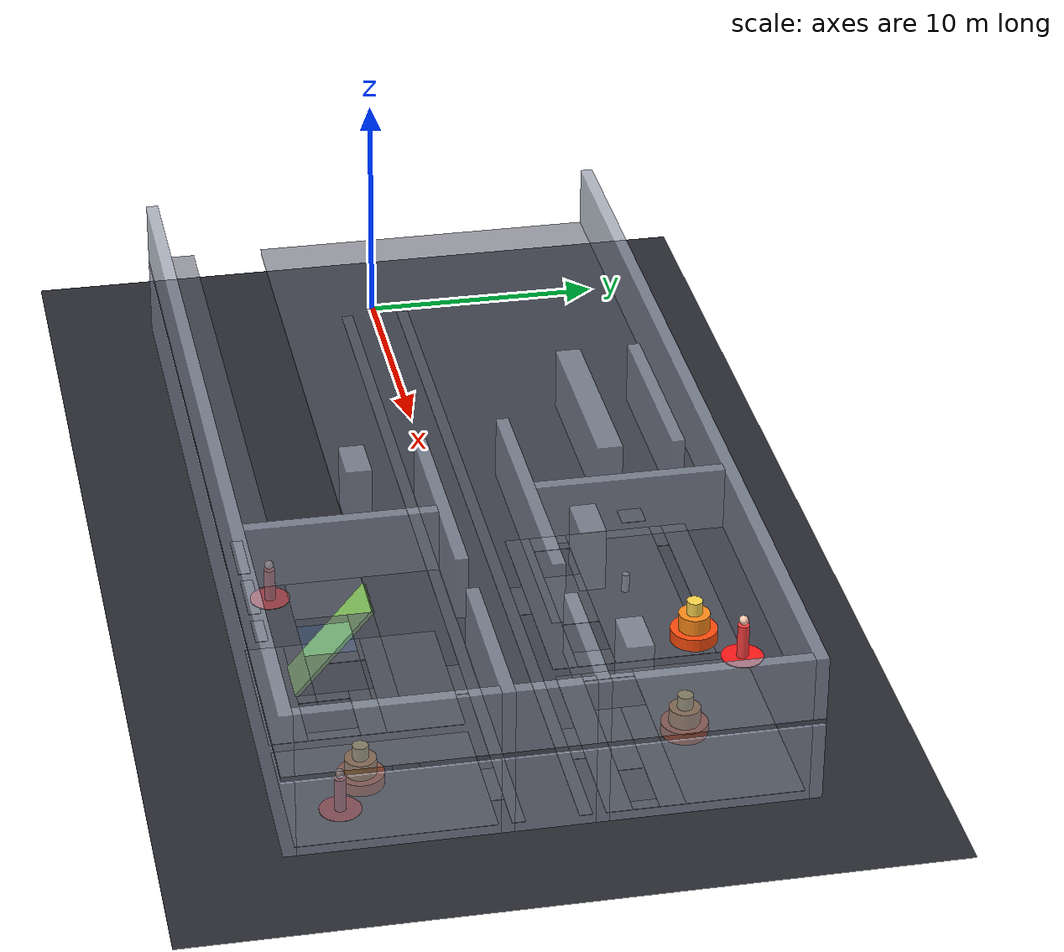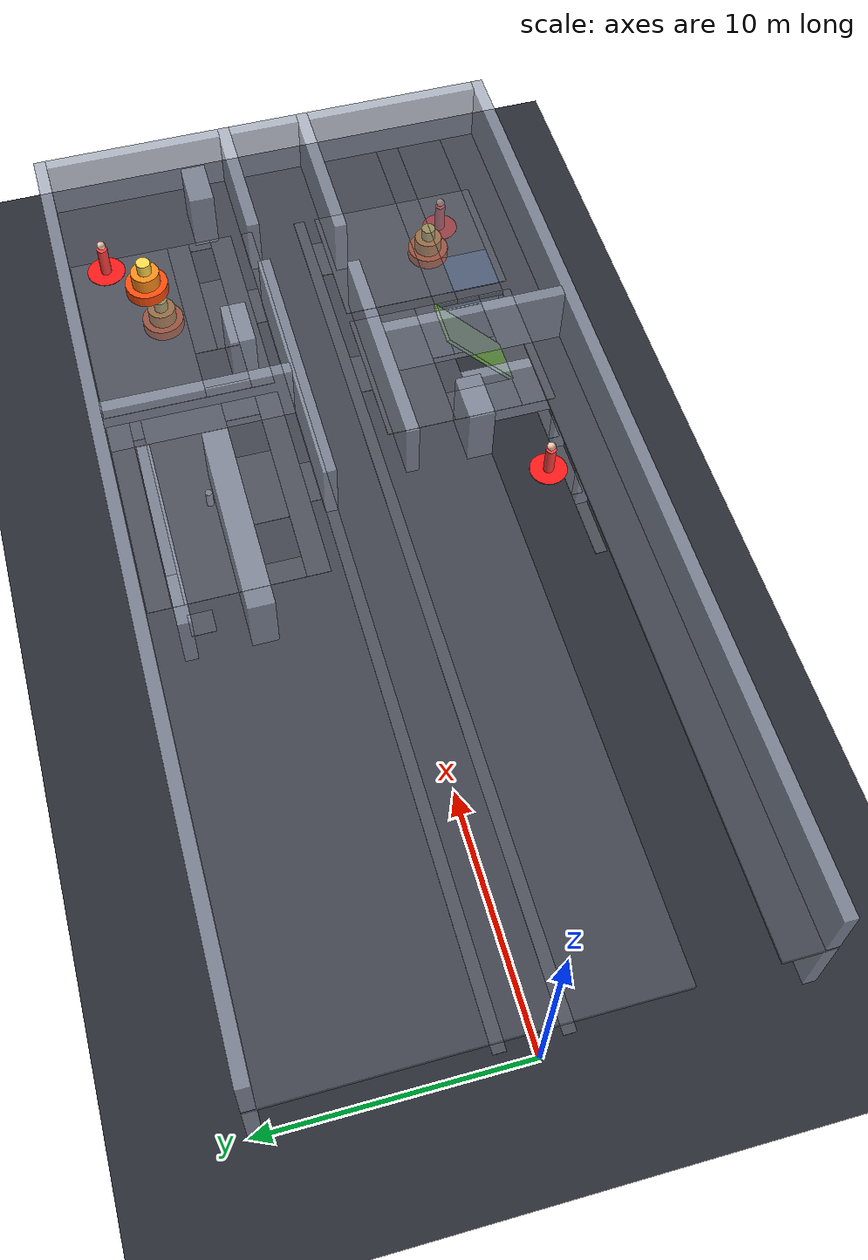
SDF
<sdf version="1.9">
 <world name="living_map_fire">
  <model name="ground">
   <static>true</static>
   <link name="l">
    <collision name="c"><geometry><plane><normal>0 0 1</normal><size>120 80</size></plane></geometry></collision>
    <visual name="v">
     <geometry><plane><normal>0 0 1</normal><size>120 80</size></plane></geometry>
     <material><ambient>0.16 0.17 0.2 1.0</ambient><diffuse>0.16 0.17 0.2 1.0</diffuse></material>
    </visual>
   </link>
  </model>
  <model name="slab0_2">
   <static>true</static>
   <pose>29.750 -8.750 0.010 0 0 0</pose>
   <link name="l">
    <collision name="c"><geometry><box><size>6.500 1.500 0.020</size></box></geometry></collision>
    <visual name="v">
     <geometry><box><size>6.500 1.500 0.020</size></box></geometry>
     <material><ambient>0.28 0.29 0.32 1.0</ambient><diffuse>0.28 0.29 0.32 1.0</diffuse></material>
    </visual>
   </link>
  </model>
  <model name="slab0_3">
   <static>true</static>
   <pose>36.500 -5.750 0.010 0 0 0</pose>
   <link name="l">
    <collision name="c"><geometry><box><size>6.000 7.500 0.020</size></box></geometry></collision>
    <visual name="v">
     <geometry><box><size>6.000 7.500 0.020</size></box></geometry>
     <material><ambient>0.28 0.29 0.32 1.0</ambient><diffuse>0.28 0.29 0.32 1.0</diffuse></material>
    </visual>
   </link>
  </model>
  <model name="slab0_6">
   <static>true</static>
   <pose>19.750 -8.750 0.010 0 0 0</pose>
   <link name="l">
    <collision name="c"><geometry><box><size>2.500 0.500 0.020</size></box></geometry></collision>
    <visual name="v">
     <geometry><box><size>2.500 0.500 0.020</size></box></geometry>
     <material><ambient>0.28 0.29 0.32 1.0</ambient><diffuse>0.28 0.29 0.32 1.0</diffuse></material>
    </visual>
   </link>
  </model>
  <model name="slab0_7">
   <static>true</static>
   <pose>22.750 -8.750 0.010 0 0 0</pose>
   <link name="l">
    <collision name="c"><geometry><box><size>2.500 0.500 0.020</size></box></geometry></collision>
    <visual name="v">
     <geometry><box><size>2.500 0.500 0.020</size></box></geometry>
     <material><ambient>0.28 0.29 0.32 1.0</ambient><diffuse>0.28 0.29 0.32 1.0</diffuse></material>
    </visual>
   </link>
  </model>
  <model name="slab0_8">
   <static>true</static>
   <pose>25.250 -8.750 0.010 0 0 0</pose>
   <link name="l">
    <collision name="c"><geometry><box><size>1.500 0.500 0.020</size></box></geometry></collision>
    <visual name="v">
     <geometry><box><size>1.500 0.500 0.020</size></box></geometry>
     <material><ambient>0.28 0.29 0.32 1.0</ambient><diffuse>0.28 0.29 0.32 1.0</diffuse></material>
    </visual>
   </link>
  </model>
  <model name="slab0_13">
   <static>true</static>
   <pose>27.250 -6.500 0.010 0 0 0</pose>
   <link name="l">
    <collision name="c"><geometry><box><size>1.500 3.000 0.020</size></box></geometry></collision>
    <visual name="v">
     <geometry><box><size>1.500 3.000 0.020</size></box></geometry>
     <material><ambient>0.28 0.29 0.32 1.0</ambient><diffuse>0.28 0.29 0.32 1.0</diffuse></material>
    </visual>
   </link>
  </model>
  <model name="slab0_14">
   <static>true</static>
   <pose>30.250 -7.000 0.010 0 0 0</pose>
   <link name="l">
    <collision name="c"><geometry><box><size>0.500 2.000 0.020</size></box></geometry></collision>
    <visual name="v">
     <geometry><box><size>0.500 2.000 0.020</size></box></geometry>
     <material><ambient>0.28 0.29 0.32 1.0</ambient><diffuse>0.28 0.29 0.32 1.0</diffuse></material>
    </visual>
   </link>
  </model>
  <model name="slab0_15">
   <static>true</static>
   <pose>32.750 -7.000 0.010 0 0 0</pose>
   <link name="l">
    <collision name="c"><geometry><box><size>0.500 2.000 0.020</size></box></geometry></collision>
    <visual name="v">
     <geometry><box><size>0.500 2.000 0.020</size></box></geometry>
     <material><ambient>0.28 0.29 0.32 1.0</ambient><diffuse>0.28 0.29 0.32 1.0</diffuse></material>
    </visual>
   </link>
  </model>
  <model name="slab0_18">
   <static>true</static>
   <pose>31.500 -5.500 0.010 0 0 0</pose>
   <link name="l">
    <collision name="c"><geometry><box><size>3.000 1.000 0.020</size></box></geometry></collision>
    <visual name="v">
     <geometry><box><size>3.000 1.000 0.020</size></box></geometry>
     <material><ambient>0.28 0.29 0.32 1.0</ambient><diffuse>0.28 0.29 0.32 1.0</diffuse></material>
    </visual>
   </link>
  </model>
  <model name="slab0_20">
   <static>true</static>
   <pose>29.750 -3.500 0.010 0 0 0</pose>
   <link name="l">
    <collision name="c"><geometry><box><size>6.500 3.000 0.020</size></box></geometry></collision>
    <visual name="v">
     <geometry><box><size>6.500 3.000 0.020</size></box></geometry>
     <material><ambient>0.28 0.29 0.32 1.0</ambient><diffuse>0.28 0.29 0.32 1.0</diffuse></material>
    </visual>
   </link>
  </model>
  <model name="slab0_23">
   <static>true</static>
   <pose>30.000 -1.750 0.010 0 0 0</pose>
   <link name="l">
    <collision name="c"><geometry><box><size>2.000 0.500 0.020</size></box></geometry></collision>
    <visual name="v">
     <geometry><box><size>2.000 0.500 0.020</size></box></geometry>
     <material><ambient>0.28 0.29 0.32 1.0</ambient><diffuse>0.28 0.29 0.32 1.0</diffuse></material>
    </visual>
   </link>
  </model>
  <model name="slab0_24">
   <static>true</static>
   <pose>37.000 -1.750 0.010 0 0 0</pose>
   <link name="l">
    <collision name="c"><geometry><box><size>2.000 0.500 0.020</size></box></geometry></collision>
    <visual name="v">
     <geometry><box><size>2.000 0.500 0.020</size></box></geometry>
     <material><ambient>0.28 0.29 0.32 1.0</ambient><diffuse>0.28 0.29 0.32 1.0</diffuse></material>
    </visual>
   </link>
  </model>
  <model name="slab0_25">
   <static>true</static>
   <pose>20.000 -1.250 0.010 0 0 0</pose>
   <link name="l">
    <collision name="c"><geometry><box><size>39.000 0.500 0.020</size></box></geometry></collision>
    <visual name="v">
     <geometry><box><size>39.000 0.500 0.020</size></box></geometry>
     <material><ambient>0.28 0.29 0.32 1.0</ambient><diffuse>0.28 0.29 0.32 1.0</diffuse></material>
    </visual>
   </link>
  </model>
  <model name="slab0_28">
   <static>true</static>
   <pose>20.000 1.250 0.010 0 0 0</pose>
   <link name="l">
    <collision name="c"><geometry><box><size>39.000 0.500 0.020</size></box></geometry></collision>
    <visual name="v">
     <geometry><box><size>39.000 0.500 0.020</size></box></geometry>
     <material><ambient>0.28 0.29 0.32 1.0</ambient><diffuse>0.28 0.29 0.32 1.0</diffuse></material>
    </visual>
   </link>
  </model>
  <model name="slab0_31">
   <static>true</static>
   <pose>25.000 1.750 0.010 0 0 0</pose>
   <link name="l">
    <collision name="c"><geometry><box><size>2.000 0.500 0.020</size></box></geometry></collision>
    <visual name="v">
     <geometry><box><size>2.000 0.500 0.020</size></box></geometry>
     <material><ambient>0.28 0.29 0.32 1.0</ambient><diffuse>0.28 0.29 0.32 1.0</diffuse></material>
    </visual>
   </link>
  </model>
  <model name="slab0_32">
   <static>true</static>
   <pose>35.000 1.750 0.010 0 0 0</pose>
   <link name="l">
    <collision name="c"><geometry><box><size>2.000 0.500 0.020</size></box></geometry></collision>
    <visual name="v">
     <geometry><box><size>2.000 0.500 0.020</size></box></geometry>
     <material><ambient>0.28 0.29 0.32 1.0</ambient><diffuse>0.28 0.29 0.32 1.0</diffuse></material>
    </visual>
   </link>
  </model>
  <model name="slab0_35">
   <static>true</static>
   <pose>25.250 2.500 0.010 0 0 0</pose>
   <link name="l">
    <collision name="c"><geometry><box><size>9.500 1.000 0.020</size></box></geometry></collision>
    <visual name="v">
     <geometry><box><size>9.500 1.000 0.020</size></box></geometry>
     <material><ambient>0.28 0.29 0.32 1.0</ambient><diffuse>0.28 0.29 0.32 1.0</diffuse></material>
    </visual>
   </link>
  </model>
  <model name="slab0_36">
   <static>true</static>
   <pose>35.000 2.500 0.010 0 0 0</pose>
   <link name="l">
    <collision name="c"><geometry><box><size>9.000 1.000 0.020</size></box></geometry></collision>
    <visual name="v">
     <geometry><box><size>9.000 1.000 0.020</size></box></geometry>
     <material><ambient>0.28 0.29 0.32 1.0</ambient><diffuse>0.28 0.29 0.32 1.0</diffuse></material>
    </visual>
   </link>
  </model>
  <model name="slab0_42">
   <static>true</static>
   <pose>21.000 3.750 0.010 0 0 0</pose>
   <link name="l">
    <collision name="c"><geometry><box><size>1.000 1.500 0.020</size></box></geometry></collision>
    <visual name="v">
     <geometry><box><size>1.000 1.500 0.020</size></box></geometry>
     <material><ambient>0.28 0.29 0.32 1.0</ambient><diffuse>0.28 0.29 0.32 1.0</diffuse></material>
    </visual>
   </link>
  </model>
  <model name="slab0_43">
   <static>true</static>
   <pose>25.250 3.750 0.010 0 0 0</pose>
   <link name="l">
    <collision name="c"><geometry><box><size>3.500 1.500 0.020</size></box></geometry></collision>
    <visual name="v">
     <geometry><box><size>3.500 1.500 0.020</size></box></geometry>
     <material><ambient>0.28 0.29 0.32 1.0</ambient><diffuse>0.28 0.29 0.32 1.0</diffuse></material>
    </visual>
   </link>
  </model>
  <model name="slab0_44">
   <static>true</static>
   <pose>29.500 3.750 0.010 0 0 0</pose>
   <link name="l">
    <collision name="c"><geometry><box><size>1.000 1.500 0.020</size></box></geometry></collision>
    <visual name="v">
     <geometry><box><size>1.000 1.500 0.020</size></box></geometry>
     <material><ambient>0.28 0.29 0.32 1.0</ambient><diffuse>0.28 0.29 0.32 1.0</diffuse></material>
    </visual>
   </link>
  </model>
  <model name="slab0_45">
   <static>true</static>
   <pose>30.750 4.000 0.010 0 0 0</pose>
   <link name="l">
    <collision name="c"><geometry><box><size>0.500 2.000 0.020</size></box></geometry></collision>
    <visual name="v">
     <geometry><box><size>0.500 2.000 0.020</size></box></geometry>
     <material><ambient>0.28 0.29 0.32 1.0</ambient><diffuse>0.28 0.29 0.32 1.0</diffuse></material>
    </visual>
   </link>
  </model>
  <model name="slab0_46">
   <static>true</static>
   <pose>35.000 3.500 0.010 0 0 0</pose>
   <link name="l">
    <collision name="c"><geometry><box><size>4.000 1.000 0.020</size></box></geometry></collision>
    <visual name="v">
     <geometry><box><size>4.000 1.000 0.020</size></box></geometry>
     <material><ambient>0.28 0.29 0.32 1.0</ambient><diffuse>0.28 0.29 0.32 1.0</diffuse></material>
    </visual>
   </link>
  </model>
  <model name="slab0_47">
   <static>true</static>
   <pose>39.250 3.500 0.010 0 0 0</pose>
   <link name="l">
    <collision name="c"><geometry><box><size>0.500 1.000 0.020</size></box></geometry></collision>
    <visual name="v">
     <geometry><box><size>0.500 1.000 0.020</size></box></geometry>
     <material><ambient>0.28 0.29 0.32 1.0</ambient><diffuse>0.28 0.29 0.32 1.0</diffuse></material>
    </visual>
   </link>
  </model>
  <model name="slab0_48">
   <static>true</static>
   <pose>36.250 4.500 0.010 0 0 0</pose>
   <link name="l">
    <collision name="c"><geometry><box><size>6.500 1.000 0.020</size></box></geometry></collision>
    <visual name="v">
     <geometry><box><size>6.500 1.000 0.020</size></box></geometry>
     <material><ambient>0.28 0.29 0.32 1.0</ambient><diffuse>0.28 0.29 0.32 1.0</diffuse></material>
    </visual>
   </link>
  </model>
  <model name="slab0_50">
   <static>true</static>
   <pose>25.250 6.250 0.010 0 0 0</pose>
   <link name="l">
    <collision name="c"><geometry><box><size>9.500 3.500 0.020</size></box></geometry></collision>
    <visual name="v">
     <geometry><box><size>9.500 3.500 0.020</size></box></geometry>
     <material><ambient>0.28 0.29 0.32 1.0</ambient><diffuse>0.28 0.29 0.32 1.0</diffuse></material>
    </visual>
   </link>
  </model>
  <model name="slab0_51">
   <static>true</static>
   <pose>35.000 7.250 0.010 0 0 0</pose>
   <link name="l">
    <collision name="c"><geometry><box><size>9.000 4.500 0.020</size></box></geometry></collision>
    <visual name="v">
     <geometry><box><size>9.000 4.500 0.020</size></box></geometry>
     <material><ambient>0.28 0.29 0.32 1.0</ambient><diffuse>0.28 0.29 0.32 1.0</diffuse></material>
    </visual>
   </link>
  </model>
  <model name="slab0_54">
   <static>true</static>
   <pose>19.500 7.500 0.010 0 0 0</pose>
   <link name="l">
    <collision name="c"><geometry><box><size>1.000 1.000 0.020</size></box></geometry></collision>
    <visual name="v">
     <geometry><box><size>1.000 1.000 0.020</size></box></geometry>
     <material><ambient>0.28 0.29 0.32 1.0</ambient><diffuse>0.28 0.29 0.32 1.0</diffuse></material>
    </visual>
   </link>
  </model>
  <model name="slab0_58">
   <static>true</static>
   <pose>21.250 8.250 0.010 0 0 0</pose>
   <link name="l">
    <collision name="c"><geometry><box><size>1.500 0.500 0.020</size></box></geometry></collision>
    <visual name="v">
     <geometry><box><size>1.500 0.500 0.020</size></box></geometry>
     <material><ambient>0.28 0.29 0.32 1.0</ambient><diffuse>0.28 0.29 0.32 1.0</diffuse></material>
    </visual>
   </link>
  </model>
  <model name="slab0_59">
   <static>true</static>
   <pose>29.500 8.250 0.010 0 0 0</pose>
   <link name="l">
    <collision name="c"><geometry><box><size>1.000 0.500 0.020</size></box></geometry></collision>
    <visual name="v">
     <geometry><box><size>1.000 0.500 0.020</size></box></geometry>
     <material><ambient>0.28 0.29 0.32 1.0</ambient><diffuse>0.28 0.29 0.32 1.0</diffuse></material>
    </visual>
   </link>
  </model>
  <model name="slab0_61">
   <static>true</static>
   <pose>25.250 9.000 0.010 0 0 0</pose>
   <link name="l">
    <collision name="c"><geometry><box><size>9.500 1.000 0.020</size></box></geometry></collision>
    <visual name="v">
     <geometry><box><size>9.500 1.000 0.020</size></box></geometry>
     <material><ambient>0.28 0.29 0.32 1.0</ambient><diffuse>0.28 0.29 0.32 1.0</diffuse></material>
    </visual>
   </link>
  </model>
  <model name="wall0_0">
   <static>true</static>
   <pose>20.000 -9.750 1.600 0 0 0</pose>
   <link name="l">
    <collision name="c"><geometry><box><size>40.000 0.500 3.200</size></box></geometry></collision>
    <visual name="v">
     <geometry><box><size>40.000 0.500 3.200</size></box></geometry>
     <material><ambient>0.62 0.65 0.72 0.75</ambient><diffuse>0.62 0.65 0.72 0.75</diffuse></material>
    </visual>
   </link>
  </model>
  <model name="wall0_3">
   <static>true</static>
   <pose>26.250 -5.750 1.600 0 0 0</pose>
   <link name="l">
    <collision name="c"><geometry><box><size>0.500 7.500 3.200</size></box></geometry></collision>
    <visual name="v">
     <geometry><box><size>0.500 7.500 3.200</size></box></geometry>
     <material><ambient>0.62 0.65 0.72 0.75</ambient><diffuse>0.62 0.65 0.72 0.75</diffuse></material>
    </visual>
   </link>
  </model>
  <model name="wall0_4">
   <static>true</static>
   <pose>33.250 -5.750 1.600 0 0 0</pose>
   <link name="l">
    <collision name="c"><geometry><box><size>0.500 7.500 3.200</size></box></geometry></collision>
    <visual name="v">
     <geometry><box><size>0.500 7.500 3.200</size></box></geometry>
     <material><ambient>0.62 0.65 0.72 0.75</ambient><diffuse>0.62 0.65 0.72 0.75</diffuse></material>
    </visual>
   </link>
  </model>
  <model name="wall0_5">
   <static>true</static>
   <pose>39.750 -5.750 1.600 0 0 0</pose>
   <link name="l">
    <collision name="c"><geometry><box><size>0.500 7.500 3.200</size></box></geometry></collision>
    <visual name="v">
     <geometry><box><size>0.500 7.500 3.200</size></box></geometry>
     <material><ambient>0.62 0.65 0.72 0.75</ambient><diffuse>0.62 0.65 0.72 0.75</diffuse></material>
    </visual>
   </link>
  </model>
  <model name="wall0_8">
   <static>true</static>
   <pose>21.250 -8.750 1.600 0 0 0</pose>
   <link name="l">
    <collision name="c"><geometry><box><size>0.500 0.500 3.200</size></box></geometry></collision>
    <visual name="v">
     <geometry><box><size>0.500 0.500 3.200</size></box></geometry>
     <material><ambient>0.62 0.65 0.72 0.75</ambient><diffuse>0.62 0.65 0.72 0.75</diffuse></material>
    </visual>
   </link>
  </model>
  <model name="wall0_9">
   <static>true</static>
   <pose>24.250 -8.750 1.600 0 0 0</pose>
   <link name="l">
    <collision name="c"><geometry><box><size>0.500 0.500 3.200</size></box></geometry></collision>
    <visual name="v">
     <geometry><box><size>0.500 0.500 3.200</size></box></geometry>
     <material><ambient>0.62 0.65 0.72 0.75</ambient><diffuse>0.62 0.65 0.72 0.75</diffuse></material>
    </visual>
   </link>
  </model>
  <model name="wall0_18">
   <static>true</static>
   <pose>24.500 -1.750 1.600 0 0 0</pose>
   <link name="l">
    <collision name="c"><geometry><box><size>9.000 0.500 3.200</size></box></geometry></collision>
    <visual name="v">
     <geometry><box><size>9.000 0.500 3.200</size></box></geometry>
     <material><ambient>0.62 0.65 0.72 0.75</ambient><diffuse>0.62 0.65 0.72 0.75</diffuse></material>
    </visual>
   </link>
  </model>
  <model name="wall0_19">
   <static>true</static>
   <pose>33.500 -1.750 1.600 0 0 0</pose>
   <link name="l">
    <collision name="c"><geometry><box><size>5.000 0.500 3.200</size></box></geometry></collision>
    <visual name="v">
     <geometry><box><size>5.000 0.500 3.200</size></box></geometry>
     <material><ambient>0.62 0.65 0.72 0.75</ambient><diffuse>0.62 0.65 0.72 0.75</diffuse></material>
    </visual>
   </link>
  </model>
  <model name="wall0_20">
   <static>true</static>
   <pose>39.000 -1.750 1.600 0 0 0</pose>
   <link name="l">
    <collision name="c"><geometry><box><size>2.000 0.500 3.200</size></box></geometry></collision>
    <visual name="v">
     <geometry><box><size>2.000 0.500 3.200</size></box></geometry>
     <material><ambient>0.62 0.65 0.72 0.75</ambient><diffuse>0.62 0.65 0.72 0.75</diffuse></material>
    </visual>
   </link>
  </model>
  <model name="wall0_22">
   <static>true</static>
   <pose>39.750 0.000 1.600 0 0 0</pose>
   <link name="l">
    <collision name="c"><geometry><box><size>0.500 3.000 3.200</size></box></geometry></collision>
    <visual name="v">
     <geometry><box><size>0.500 3.000 3.200</size></box></geometry>
     <material><ambient>0.62 0.65 0.72 0.75</ambient><diffuse>0.62 0.65 0.72 0.75</diffuse></material>
    </visual>
   </link>
  </model>
  <model name="wall0_26">
   <static>true</static>
   <pose>20.000 1.750 1.600 0 0 0</pose>
   <link name="l">
    <collision name="c"><geometry><box><size>8.000 0.500 3.200</size></box></geometry></collision>
    <visual name="v">
     <geometry><box><size>8.000 0.500 3.200</size></box></geometry>
     <material><ambient>0.62 0.65 0.72 0.75</ambient><diffuse>0.62 0.65 0.72 0.75</diffuse></material>
    </visual>
   </link>
  </model>
  <model name="wall0_27">
   <static>true</static>
   <pose>30.000 1.750 1.600 0 0 0</pose>
   <link name="l">
    <collision name="c"><geometry><box><size>8.000 0.500 3.200</size></box></geometry></collision>
    <visual name="v">
     <geometry><box><size>8.000 0.500 3.200</size></box></geometry>
     <material><ambient>0.62 0.65 0.72 0.75</ambient><diffuse>0.62 0.65 0.72 0.75</diffuse></material>
    </visual>
   </link>
  </model>
  <model name="wall0_28">
   <static>true</static>
   <pose>38.000 1.750 1.600 0 0 0</pose>
   <link name="l">
    <collision name="c"><geometry><box><size>4.000 0.500 3.200</size></box></geometry></collision>
    <visual name="v">
     <geometry><box><size>4.000 0.500 3.200</size></box></geometry>
     <material><ambient>0.62 0.65 0.72 0.75</ambient><diffuse>0.62 0.65 0.72 0.75</diffuse></material>
    </visual>
   </link>
  </model>
  <model name="wall0_31">
   <static>true</static>
   <pose>20.250 5.750 1.600 0 0 0</pose>
   <link name="l">
    <collision name="c"><geometry><box><size>0.500 7.500 3.200</size></box></geometry></collision>
    <visual name="v">
     <geometry><box><size>0.500 7.500 3.200</size></box></geometry>
     <material><ambient>0.62 0.65 0.72 0.75</ambient><diffuse>0.62 0.65 0.72 0.75</diffuse></material>
    </visual>
   </link>
  </model>
  <model name="wall0_32">
   <static>true</static>
   <pose>30.250 5.750 1.600 0 0 0</pose>
   <link name="l">
    <collision name="c"><geometry><box><size>0.500 7.500 3.200</size></box></geometry></collision>
    <visual name="v">
     <geometry><box><size>0.500 7.500 3.200</size></box></geometry>
     <material><ambient>0.62 0.65 0.72 0.75</ambient><diffuse>0.62 0.65 0.72 0.75</diffuse></material>
    </visual>
   </link>
  </model>
  <model name="wall0_33">
   <static>true</static>
   <pose>39.750 5.750 1.600 0 0 0</pose>
   <link name="l">
    <collision name="c"><geometry><box><size>0.500 7.500 3.200</size></box></geometry></collision>
    <visual name="v">
     <geometry><box><size>0.500 7.500 3.200</size></box></geometry>
     <material><ambient>0.62 0.65 0.72 0.75</ambient><diffuse>0.62 0.65 0.72 0.75</diffuse></material>
    </visual>
   </link>
  </model>
  <model name="wall0_37">
   <static>true</static>
   <pose>22.500 3.250 1.600 0 0 0</pose>
   <link name="l">
    <collision name="c"><geometry><box><size>2.000 0.500 3.200</size></box></geometry></collision>
    <visual name="v">
     <geometry><box><size>2.000 0.500 3.200</size></box></geometry>
     <material><ambient>0.62 0.65 0.72 0.75</ambient><diffuse>0.62 0.65 0.72 0.75</diffuse></material>
    </visual>
   </link>
  </model>
  <model name="wall0_38">
   <static>true</static>
   <pose>28.000 3.250 1.600 0 0 0</pose>
   <link name="l">
    <collision name="c"><geometry><box><size>2.000 0.500 3.200</size></box></geometry></collision>
    <visual name="v">
     <geometry><box><size>2.000 0.500 3.200</size></box></geometry>
     <material><ambient>0.62 0.65 0.72 0.75</ambient><diffuse>0.62 0.65 0.72 0.75</diffuse></material>
    </visual>
   </link>
  </model>
  <model name="wall0_39">
   <static>true</static>
   <pose>32.000 3.250 1.600 0 0 0</pose>
   <link name="l">
    <collision name="c"><geometry><box><size>2.000 0.500 3.200</size></box></geometry></collision>
    <visual name="v">
     <geometry><box><size>2.000 0.500 3.200</size></box></geometry>
     <material><ambient>0.62 0.65 0.72 0.75</ambient><diffuse>0.62 0.65 0.72 0.75</diffuse></material>
    </visual>
   </link>
  </model>
  <model name="wall0_40">
   <static>true</static>
   <pose>38.000 3.500 1.600 0 0 0</pose>
   <link name="l">
    <collision name="c"><geometry><box><size>2.000 1.000 3.200</size></box></geometry></collision>
    <visual name="v">
     <geometry><box><size>2.000 1.000 3.200</size></box></geometry>
     <material><ambient>0.62 0.65 0.72 0.75</ambient><diffuse>0.62 0.65 0.72 0.75</diffuse></material>
    </visual>
   </link>
  </model>
  <model name="wall0_43">
   <static>true</static>
   <pose>21.750 3.750 1.600 0 0 0</pose>
   <link name="l">
    <collision name="c"><geometry><box><size>0.500 0.500 3.200</size></box></geometry></collision>
    <visual name="v">
     <geometry><box><size>0.500 0.500 3.200</size></box></geometry>
     <material><ambient>0.62 0.65 0.72 0.75</ambient><diffuse>0.62 0.65 0.72 0.75</diffuse></material>
    </visual>
   </link>
  </model>
  <model name="wall0_44">
   <static>true</static>
   <pose>23.250 3.750 1.600 0 0 0</pose>
   <link name="l">
    <collision name="c"><geometry><box><size>0.500 0.500 3.200</size></box></geometry></collision>
    <visual name="v">
     <geometry><box><size>0.500 0.500 3.200</size></box></geometry>
     <material><ambient>0.62 0.65 0.72 0.75</ambient><diffuse>0.62 0.65 0.72 0.75</diffuse></material>
    </visual>
   </link>
  </model>
  <model name="wall0_45">
   <static>true</static>
   <pose>27.250 3.750 1.600 0 0 0</pose>
   <link name="l">
    <collision name="c"><geometry><box><size>0.500 0.500 3.200</size></box></geometry></collision>
    <visual name="v">
     <geometry><box><size>0.500 0.500 3.200</size></box></geometry>
     <material><ambient>0.62 0.65 0.72 0.75</ambient><diffuse>0.62 0.65 0.72 0.75</diffuse></material>
    </visual>
   </link>
  </model>
  <model name="wall0_46">
   <static>true</static>
   <pose>28.750 3.750 1.600 0 0 0</pose>
   <link name="l">
    <collision name="c"><geometry><box><size>0.500 0.500 3.200</size></box></geometry></collision>
    <visual name="v">
     <geometry><box><size>0.500 0.500 3.200</size></box></geometry>
     <material><ambient>0.62 0.65 0.72 0.75</ambient><diffuse>0.62 0.65 0.72 0.75</diffuse></material>
    </visual>
   </link>
  </model>
  <model name="wall0_47">
   <static>true</static>
   <pose>31.250 4.000 1.600 0 0 0</pose>
   <link name="l">
    <collision name="c"><geometry><box><size>0.500 1.000 3.200</size></box></geometry></collision>
    <visual name="v">
     <geometry><box><size>0.500 1.000 3.200</size></box></geometry>
     <material><ambient>0.62 0.65 0.72 0.75</ambient><diffuse>0.62 0.65 0.72 0.75</diffuse></material>
    </visual>
   </link>
  </model>
  <model name="wall0_48">
   <static>true</static>
   <pose>32.750 4.000 1.600 0 0 0</pose>
   <link name="l">
    <collision name="c"><geometry><box><size>0.500 1.000 3.200</size></box></geometry></collision>
    <visual name="v">
     <geometry><box><size>0.500 1.000 3.200</size></box></geometry>
     <material><ambient>0.62 0.65 0.72 0.75</ambient><diffuse>0.62 0.65 0.72 0.75</diffuse></material>
    </visual>
   </link>
  </model>
  <model name="wall0_50">
   <static>true</static>
   <pose>22.500 4.250 1.600 0 0 0</pose>
   <link name="l">
    <collision name="c"><geometry><box><size>2.000 0.500 3.200</size></box></geometry></collision>
    <visual name="v">
     <geometry><box><size>2.000 0.500 3.200</size></box></geometry>
     <material><ambient>0.62 0.65 0.72 0.75</ambient><diffuse>0.62 0.65 0.72 0.75</diffuse></material>
    </visual>
   </link>
  </model>
  <model name="wall0_51">
   <static>true</static>
   <pose>28.000 4.250 1.600 0 0 0</pose>
   <link name="l">
    <collision name="c"><geometry><box><size>2.000 0.500 3.200</size></box></geometry></collision>
    <visual name="v">
     <geometry><box><size>2.000 0.500 3.200</size></box></geometry>
     <material><ambient>0.62 0.65 0.72 0.75</ambient><diffuse>0.62 0.65 0.72 0.75</diffuse></material>
    </visual>
   </link>
  </model>
  <model name="wall0_52">
   <static>true</static>
   <pose>32.000 4.750 1.600 0 0 0</pose>
   <link name="l">
    <collision name="c"><geometry><box><size>2.000 0.500 3.200</size></box></geometry></collision>
    <visual name="v">
     <geometry><box><size>2.000 0.500 3.200</size></box></geometry>
     <material><ambient>0.62 0.65 0.72 0.75</ambient><diffuse>0.62 0.65 0.72 0.75</diffuse></material>
    </visual>
   </link>
  </model>
  <model name="wall0_57">
   <static>true</static>
   <pose>25.500 8.250 1.600 0 0 0</pose>
   <link name="l">
    <collision name="c"><geometry><box><size>7.000 0.500 3.200</size></box></geometry></collision>
    <visual name="v">
     <geometry><box><size>7.000 0.500 3.200</size></box></geometry>
     <material><ambient>0.62 0.65 0.72 0.75</ambient><diffuse>0.62 0.65 0.72 0.75</diffuse></material>
    </visual>
   </link>
  </model>
  <model name="wall0_58">
   <static>true</static>
   <pose>20.000 9.750 1.600 0 0 0</pose>
   <link name="l">
    <collision name="c"><geometry><box><size>40.000 0.500 3.200</size></box></geometry></collision>
    <visual name="v">
     <geometry><box><size>40.000 0.500 3.200</size></box></geometry>
     <material><ambient>0.62 0.65 0.72 0.75</ambient><diffuse>0.62 0.65 0.72 0.75</diffuse></material>
    </visual>
   </link>
  </model>
  <model name="stairs0">
   <static>true</static>
   <pose>29.00 -6.50 1.75 0.8622 0 0</pose>
   <link name="l">
    <visual name="v">
     <geometry><box><size>2.00 4.61 0.15</size></box></geometry>
     <material><ambient>0.5 0.75 0.35 1.0</ambient><diffuse>0.5 0.75 0.35 1.0</diffuse></material>
    </visual>
   </link>
  </model>
  <model name="atrium0">
   <static>true</static>
   <pose>31.500 -7.000 1.750 0 0 0</pose>
   <link name="l">
    <visual name="v">
     <geometry><box><size>2.00 2.00 3.50</size></box></geometry>
     <material><ambient>0.4 0.6 0.9 0.25</ambient><diffuse>0.4 0.6 0.9 0.25</diffuse></material>
     <transparency>0.75</transparency>
    </visual>
   </link>
  </model>
  <model name="slab1_0">
   <static>true</static>
   <pose>20.000 -9.000 3.400 0 0 0</pose>
   <link name="l">
    <collision name="c"><geometry><box><size>40.000 2.000 0.200</size></box></geometry></collision>
    <visual name="v">
     <geometry><box><size>40.000 2.000 0.200</size></box></geometry>
     <material><ambient>0.36 0.37 0.42 0.6</ambient><diffuse>0.36 0.37 0.42 0.6</diffuse></material>
    </visual>
   </link>
  </model>
  <model name="slab1_2">
   <static>true</static>
   <pose>30.250 -7.000 3.400 0 0 0</pose>
   <link name="l">
    <collision name="c"><geometry><box><size>0.500 2.000 0.200</size></box></geometry></collision>
    <visual name="v">
     <geometry><box><size>0.500 2.000 0.200</size></box></geometry>
     <material><ambient>0.36 0.37 0.42 0.6</ambient><diffuse>0.36 0.37 0.42 0.6</diffuse></material>
    </visual>
   </link>
  </model>
  <model name="slab1_3">
   <static>true</static>
   <pose>36.250 -7.000 3.400 0 0 0</pose>
   <link name="l">
    <collision name="c"><geometry><box><size>7.500 2.000 0.200</size></box></geometry></collision>
    <visual name="v">
     <geometry><box><size>7.500 2.000 0.200</size></box></geometry>
     <material><ambient>0.36 0.37 0.42 0.6</ambient><diffuse>0.36 0.37 0.42 0.6</diffuse></material>
    </visual>
   </link>
  </model>
  <model name="slab1_4">
   <static>true</static>
   <pose>35.000 -5.500 3.400 0 0 0</pose>
   <link name="l">
    <collision name="c"><geometry><box><size>10.000 1.000 0.200</size></box></geometry></collision>
    <visual name="v">
     <geometry><box><size>10.000 1.000 0.200</size></box></geometry>
     <material><ambient>0.36 0.37 0.42 0.6</ambient><diffuse>0.36 0.37 0.42 0.6</diffuse></material>
    </visual>
   </link>
  </model>
  <model name="slab1_5">
   <static>true</static>
   <pose>20.000 2.500 3.400 0 0 0</pose>
   <link name="l">
    <collision name="c"><geometry><box><size>40.000 15.000 0.200</size></box></geometry></collision>
    <visual name="v">
     <geometry><box><size>40.000 15.000 0.200</size></box></geometry>
     <material><ambient>0.36 0.37 0.42 0.6</ambient><diffuse>0.36 0.37 0.42 0.6</diffuse></material>
    </visual>
   </link>
  </model>
  <model name="wall1_0">
   <static>true</static>
   <pose>20.000 -9.750 4.800 0 0 0</pose>
   <link name="l">
    <collision name="c"><geometry><box><size>40.000 0.500 2.600</size></box></geometry></collision>
    <visual name="v">
     <geometry><box><size>40.000 0.500 2.600</size></box></geometry>
     <material><ambient>0.62 0.65 0.72 0.75</ambient><diffuse>0.62 0.65 0.72 0.75</diffuse></material>
    </visual>
   </link>
  </model>
  <model name="wall1_3">
   <static>true</static>
   <pose>27.250 -5.750 4.800 0 0 0</pose>
   <link name="l">
    <collision name="c"><geometry><box><size>0.500 7.500 2.600</size></box></geometry></collision>
    <visual name="v">
     <geometry><box><size>0.500 7.500 2.600</size></box></geometry>
     <material><ambient>0.62 0.65 0.72 0.75</ambient><diffuse>0.62 0.65 0.72 0.75</diffuse></material>
    </visual>
   </link>
  </model>
  <model name="wall1_4">
   <static>true</static>
   <pose>39.750 -5.750 4.800 0 0 0</pose>
   <link name="l">
    <collision name="c"><geometry><box><size>0.500 7.500 2.600</size></box></geometry></collision>
    <visual name="v">
     <geometry><box><size>0.500 7.500 2.600</size></box></geometry>
     <material><ambient>0.62 0.65 0.72 0.75</ambient><diffuse>0.62 0.65 0.72 0.75</diffuse></material>
    </visual>
   </link>
  </model>
  <model name="wall1_6">
   <static>true</static>
   <pose>23.000 -4.500 4.800 0 0 0</pose>
   <link name="l">
    <collision name="c"><geometry><box><size>2.000 1.000 2.600</size></box></geometry></collision>
    <visual name="v">
     <geometry><box><size>2.000 1.000 2.600</size></box></geometry>
     <material><ambient>0.62 0.65 0.72 0.75</ambient><diffuse>0.62 0.65 0.72 0.75</diffuse></material>
    </visual>
   </link>
  </model>
  <model name="wall1_9">
   <static>true</static>
   <pose>26.500 -1.750 4.800 0 0 0</pose>
   <link name="l">
    <collision name="c"><geometry><box><size>9.000 0.500 2.600</size></box></geometry></collision>
    <visual name="v">
     <geometry><box><size>9.000 0.500 2.600</size></box></geometry>
     <material><ambient>0.62 0.65 0.72 0.75</ambient><diffuse>0.62 0.65 0.72 0.75</diffuse></material>
    </visual>
   </link>
  </model>
  <model name="wall1_10">
   <static>true</static>
   <pose>36.500 -1.750 4.800 0 0 0</pose>
   <link name="l">
    <collision name="c"><geometry><box><size>7.000 0.500 2.600</size></box></geometry></collision>
    <visual name="v">
     <geometry><box><size>7.000 0.500 2.600</size></box></geometry>
     <material><ambient>0.62 0.65 0.72 0.75</ambient><diffuse>0.62 0.65 0.72 0.75</diffuse></material>
    </visual>
   </link>
  </model>
  <model name="wall1_12">
   <static>true</static>
   <pose>39.750 0.000 4.800 0 0 0</pose>
   <link name="l">
    <collision name="c"><geometry><box><size>0.500 3.000 2.600</size></box></geometry></collision>
    <visual name="v">
     <geometry><box><size>0.500 3.000 2.600</size></box></geometry>
     <material><ambient>0.62 0.65 0.72 0.75</ambient><diffuse>0.62 0.65 0.72 0.75</diffuse></material>
    </visual>
   </link>
  </model>
  <model name="wall1_15">
   <static>true</static>
   <pose>26.500 1.750 4.800 0 0 0</pose>
   <link name="l">
    <collision name="c"><geometry><box><size>11.000 0.500 2.600</size></box></geometry></collision>
    <visual name="v">
     <geometry><box><size>11.000 0.500 2.600</size></box></geometry>
     <material><ambient>0.62 0.65 0.72 0.75</ambient><diffuse>0.62 0.65 0.72 0.75</diffuse></material>
    </visual>
   </link>
  </model>
  <model name="wall1_16">
   <static>true</static>
   <pose>37.000 1.750 4.800 0 0 0</pose>
   <link name="l">
    <collision name="c"><geometry><box><size>6.000 0.500 2.600</size></box></geometry></collision>
    <visual name="v">
     <geometry><box><size>6.000 0.500 2.600</size></box></geometry>
     <material><ambient>0.62 0.65 0.72 0.75</ambient><diffuse>0.62 0.65 0.72 0.75</diffuse></material>
    </visual>
   </link>
  </model>
  <model name="wall1_19">
   <static>true</static>
   <pose>26.250 5.750 4.800 0 0 0</pose>
   <link name="l">
    <collision name="c"><geometry><box><size>0.500 7.500 2.600</size></box></geometry></collision>
    <visual name="v">
     <geometry><box><size>0.500 7.500 2.600</size></box></geometry>
     <material><ambient>0.62 0.65 0.72 0.75</ambient><diffuse>0.62 0.65 0.72 0.75</diffuse></material>
    </visual>
   </link>
  </model>
  <model name="wall1_20">
   <static>true</static>
   <pose>39.750 5.750 4.800 0 0 0</pose>
   <link name="l">
    <collision name="c"><geometry><box><size>0.500 7.500 2.600</size></box></geometry></collision>
    <visual name="v">
     <geometry><box><size>0.500 7.500 2.600</size></box></geometry>
     <material><ambient>0.62 0.65 0.72 0.75</ambient><diffuse>0.62 0.65 0.72 0.75</diffuse></material>
    </visual>
   </link>
  </model>
  <model name="wall1_21">
   <static>true</static>
   <pose>29.000 3.500 4.800 0 0 0</pose>
   <link name="l">
    <collision name="c"><geometry><box><size>2.000 1.000 2.600</size></box></geometry></collision>
    <visual name="v">
     <geometry><box><size>2.000 1.000 2.600</size></box></geometry>
     <material><ambient>0.62 0.65 0.72 0.75</ambient><diffuse>0.62 0.65 0.72 0.75</diffuse></material>
    </visual>
   </link>
  </model>
  <model name="wall1_22">
   <static>true</static>
   <pose>37.000 3.500 4.800 0 0 0</pose>
   <link name="l">
    <collision name="c"><geometry><box><size>2.000 1.000 2.600</size></box></geometry></collision>
    <visual name="v">
     <geometry><box><size>2.000 1.000 2.600</size></box></geometry>
     <material><ambient>0.62 0.65 0.72 0.75</ambient><diffuse>0.62 0.65 0.72 0.75</diffuse></material>
    </visual>
   </link>
  </model>
  <model name="wall1_25">
   <static>true</static>
   <pose>20.000 5.500 4.800 0 0 0</pose>
   <link name="l">
    <collision name="c"><geometry><box><size>8.000 1.000 2.600</size></box></geometry></collision>
    <visual name="v">
     <geometry><box><size>8.000 1.000 2.600</size></box></geometry>
     <material><ambient>0.62 0.65 0.72 0.75</ambient><diffuse>0.62 0.65 0.72 0.75</diffuse></material>
    </visual>
   </link>
  </model>
  <model name="wall1_26">
   <static>true</static>
   <pose>20.000 8.250 4.800 0 0 0</pose>
   <link name="l">
    <collision name="c"><geometry><box><size>8.000 0.500 2.600</size></box></geometry></collision>
    <visual name="v">
     <geometry><box><size>8.000 0.500 2.600</size></box></geometry>
     <material><ambient>0.62 0.65 0.72 0.75</ambient><diffuse>0.62 0.65 0.72 0.75</diffuse></material>
    </visual>
   </link>
  </model>
  <model name="wall1_27">
   <static>true</static>
   <pose>20.000 9.750 4.800 0 0 0</pose>
   <link name="l">
    <collision name="c"><geometry><box><size>40.000 0.500 2.600</size></box></geometry></collision>
    <visual name="v">
     <geometry><box><size>40.000 0.500 2.600</size></box></geometry>
     <material><ambient>0.62 0.65 0.72 0.75</ambient><diffuse>0.62 0.65 0.72 0.75</diffuse></material>
    </visual>
   </link>
  </model>
  <model name="fire_0">
   <static>false</static>
   <pose>35.0 6.0 0.0 0 0 0</pose>
   <link name="l">
    <gravity>false</gravity>
    <inertial><mass>1</mass><inertia><ixx>0.1</ixx><iyy>0.1</iyy><izz>0.1</izz></inertia></inertial>
    <visual name="a">
     <pose>0 0 0.25 0 0 0</pose>
     <geometry><cylinder><radius>0.9</radius><length>0.5</length></cylinder></geometry>
     <material>
      <ambient>1 0.3 0.05 1.0</ambient>
      <diffuse>1 0.3 0.05 1.0</diffuse>
      <emissive>1 0.35 0.05 1</emissive>
     </material>
    </visual>
    <visual name="b">
     <pose>0 0 0.7 0 0 0</pose>
     <geometry><cylinder><radius>0.6</radius><length>0.9</length></cylinder></geometry>
     <material>
      <ambient>1 0.55 0.1 1.0</ambient>
      <diffuse>1 0.55 0.1 1.0</diffuse>
      <emissive>1 0.6 0.1 1</emissive>
     </material>
    </visual>
    <visual name="c">
     <pose>0 0 1.2 0 0 0</pose>
     <geometry><cylinder><radius>0.3</radius><length>1.0</length></cylinder></geometry>
     <material>
      <ambient>1 0.85 0.3 1.0</ambient>
      <diffuse>1 0.85 0.3 1.0</diffuse>
      <emissive>1 0.9 0.4 1</emissive>
     </material>
    </visual>
    <light type="point" name="fl0">
     <pose>0 0 1.2 0 0 0</pose>
     <diffuse>1 0.45 0.1 1</diffuse>
     <specular>1 0.4 0.1 1</specular>
     <attenuation>
      <range>9</range>
      <constant>0.3</constant>
      <linear>0.15</linear>
      <quadratic>0.03</quadratic>
     </attenuation>
     <cast_shadows>false</cast_shadows>
    </light>
   </link>
  </model>
  <model name="fire_1">
   <static>false</static>
   <pose>36.0 -6.5 0.0 0 0 0</pose>
   <link name="l">
    <gravity>false</gravity>
    <inertial><mass>1</mass><inertia><ixx>0.1</ixx><iyy>0.1</iyy><izz>0.1</izz></inertia></inertial>
    <visual name="a">
     <pose>0 0 0.25 0 0 0</pose>
     <geometry><cylinder><radius>0.9</radius><length>0.5</length></cylinder></geometry>
     <material>
      <ambient>1 0.3 0.05 1.0</ambient>
      <diffuse>1 0.3 0.05 1.0</diffuse>
      <emissive>1 0.35 0.05 1</emissive>
     </material>
    </visual>
    <visual name="b">
     <pose>0 0 0.7 0 0 0</pose>
     <geometry><cylinder><radius>0.6</radius><length>0.9</length></cylinder></geometry>
     <material>
      <ambient>1 0.55 0.1 1.0</ambient>
      <diffuse>1 0.55 0.1 1.0</diffuse>
      <emissive>1 0.6 0.1 1</emissive>
     </material>
    </visual>
    <visual name="c">
     <pose>0 0 1.2 0 0 0</pose>
     <geometry><cylinder><radius>0.3</radius><length>1.0</length></cylinder></geometry>
     <material>
      <ambient>1 0.85 0.3 1.0</ambient>
      <diffuse>1 0.85 0.3 1.0</diffuse>
      <emissive>1 0.9 0.4 1</emissive>
     </material>
    </visual>
    <light type="point" name="fl1">
     <pose>0 0 1.2 0 0 0</pose>
     <diffuse>1 0.45 0.1 1</diffuse>
     <specular>1 0.4 0.1 1</specular>
     <attenuation>
      <range>9</range>
      <constant>0.3</constant>
      <linear>0.15</linear>
      <quadratic>0.03</quadratic>
     </attenuation>
     <cast_shadows>false</cast_shadows>
    </light>
   </link>
  </model>
  <model name="fire_3">
   <static>false</static>
   <pose>34.0 6.5 3.5 0 0 0</pose>
   <link name="l">
    <gravity>false</gravity>
    <inertial><mass>1</mass><inertia><ixx>0.1</ixx><iyy>0.1</iyy><izz>0.1</izz></inertia></inertial>
    <visual name="a">
     <pose>0 0 0.25 0 0 0</pose>
     <geometry><cylinder><radius>0.9</radius><length>0.5</length></cylinder></geometry>
     <material>
      <ambient>1 0.3 0.05 1.0</ambient>
      <diffuse>1 0.3 0.05 1.0</diffuse>
      <emissive>1 0.35 0.05 1</emissive>
     </material>
    </visual>
    <visual name="b">
     <pose>0 0 0.7 0 0 0</pose>
     <geometry><cylinder><radius>0.6</radius><length>0.9</length></cylinder></geometry>
     <material>
      <ambient>1 0.55 0.1 1.0</ambient>
      <diffuse>1 0.55 0.1 1.0</diffuse>
      <emissive>1 0.6 0.1 1</emissive>
     </material>
    </visual>
    <visual name="c">
     <pose>0 0 1.2 0 0 0</pose>
     <geometry><cylinder><radius>0.3</radius><length>1.0</length></cylinder></geometry>
     <material>
      <ambient>1 0.85 0.3 1.0</ambient>
      <diffuse>1 0.85 0.3 1.0</diffuse>
      <emissive>1 0.9 0.4 1</emissive>
     </material>
    </visual>
    <light type="point" name="fl3">
     <pose>0 0 1.2 0 0 0</pose>
     <diffuse>1 0.45 0.1 1</diffuse>
     <specular>1 0.4 0.1 1</specular>
     <attenuation>
      <range>9</range>
      <constant>0.3</constant>
      <linear>0.15</linear>
      <quadratic>0.03</quadratic>
     </attenuation>
     <cast_shadows>false</cast_shadows>
    </light>
   </link>
  </model>
  <model name="steam_pipe_0">
   <static>true</static>
   <pose>25.000 6.000 0.400 0 0 0</pose>
   <link name="l">
    <visual name="v">
     <geometry><cylinder><radius>0.15</radius><length>0.8</length></cylinder></geometry>
     <material><ambient>0.7 0.7 0.75 1.0</ambient><diffuse>0.7 0.7 0.75 1.0</diffuse></material>
    </visual>
   </link>
  </model>
  <model name="steam_cloud_0">
   <static>true</static>
   <pose>25.000 6.000 1.100 0 0 0</pose>
   <link name="l">
    <visual name="v">
     <geometry><sphere><radius>1.0</radius></sphere></geometry>
     <material><ambient>0.95 0.95 1 0.4</ambient><diffuse>0.95 0.95 1 0.4</diffuse></material>
     <transparency>0.7</transparency>
    </visual>
   </link>
  </model>
  <model name="person_0">
   <static>false</static>
   <pose>37.5 -7.5 0.0 0 0 0</pose>
   <link name="l">
    <gravity>false</gravity>
    <inertial><mass>1</mass><inertia><ixx>0.1</ixx><iyy>0.1</iyy><izz>0.1</izz></inertia></inertial>
    <visual name="body">
     <pose>0 0 0.7 0 0 0</pose>
     <geometry><cylinder><radius>0.22</radius><length>1.4</length></cylinder></geometry>
     <material><ambient>1 0.25 0.25 1.0</ambient><diffuse>1 0.25 0.25 1.0</diffuse></material>
    </visual>
    <visual name="head">
     <pose>0 0 1.6 0 0 0</pose>
     <geometry><sphere><radius>0.18</radius></sphere></geometry>
     <material><ambient>1 0.8 0.7 1.0</ambient><diffuse>1 0.8 0.7 1.0</diffuse></material>
    </visual>
    <visual name="ring">
     <pose>0 0 0.02 0 0 0</pose>
     <geometry><cylinder><radius>0.8</radius><length>0.03</length></cylinder></geometry>
     <material>
      <ambient>1 0.1 0.1 1.0</ambient>
      <diffuse>1 0.1 0.1 1.0</diffuse>
      <emissive>0.6 0 0 1</emissive>
     </material>
    </visual>
   </link>
  </model>
  <model name="person_1">
   <static>false</static>
   <pose>23.0 -8.0 0.0 0 0 0</pose>
   <link name="l">
    <gravity>false</gravity>
    <inertial><mass>1</mass><inertia><ixx>0.1</ixx><iyy>0.1</iyy><izz>0.1</izz></inertia></inertial>
    <visual name="body">
     <pose>0 0 0.7 0 0 0</pose>
     <geometry><cylinder><radius>0.22</radius><length>1.4</length></cylinder></geometry>
     <material><ambient>1 0.25 0.25 1.0</ambient><diffuse>1 0.25 0.25 1.0</diffuse></material>
    </visual>
    <visual name="head">
     <pose>0 0 1.6 0 0 0</pose>
     <geometry><sphere><radius>0.18</radius></sphere></geometry>
     <material><ambient>1 0.8 0.7 1.0</ambient><diffuse>1 0.8 0.7 1.0</diffuse></material>
    </visual>
    <visual name="ring">
     <pose>0 0 0.02 0 0 0</pose>
     <geometry><cylinder><radius>0.8</radius><length>0.03</length></cylinder></geometry>
     <material>
      <ambient>1 0.1 0.1 1.0</ambient>
      <diffuse>1 0.1 0.1 1.0</diffuse>
      <emissive>0.6 0 0 1</emissive>
     </material>
    </visual>
   </link>
  </model>
  <model name="person_2">
   <static>false</static>
   <pose>35.5 8.0 3.5 0 0 0</pose>
   <link name="l">
    <gravity>false</gravity>
    <inertial><mass>1</mass><inertia><ixx>0.1</ixx><iyy>0.1</iyy><izz>0.1</izz></inertia></inertial>
    <visual name="body">
     <pose>0 0 0.7 0 0 0</pose>
     <geometry><cylinder><radius>0.22</radius><length>1.4</length></cylinder></geometry>
     <material><ambient>1 0.25 0.25 1.0</ambient><diffuse>1 0.25 0.25 1.0</diffuse></material>
    </visual>
    <visual name="head">
     <pose>0 0 1.6 0 0 0</pose>
     <geometry><sphere><radius>0.18</radius></sphere></geometry>
     <material><ambient>1 0.8 0.7 1.0</ambient><diffuse>1 0.8 0.7 1.0</diffuse></material>
    </visual>
    <visual name="ring">
     <pose>0 0 0.02 0 0 0</pose>
     <geometry><cylinder><radius>0.8</radius><length>0.03</length></cylinder></geometry>
     <material>
      <ambient>1 0.1 0.1 1.0</ambient>
      <diffuse>1 0.1 0.1 1.0</diffuse>
      <emissive>0.6 0 0 1</emissive>
     </material>
    </visual>
   </link>
  </model>
 </world>
</sdf>
